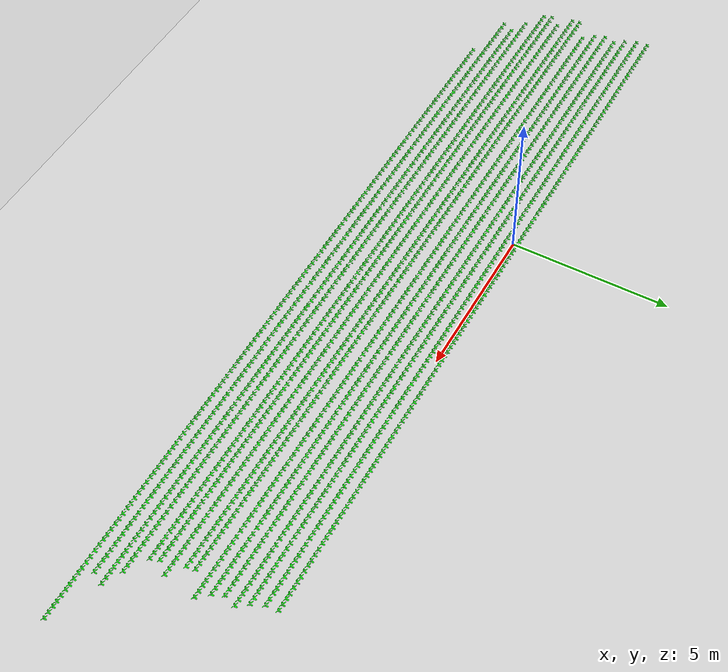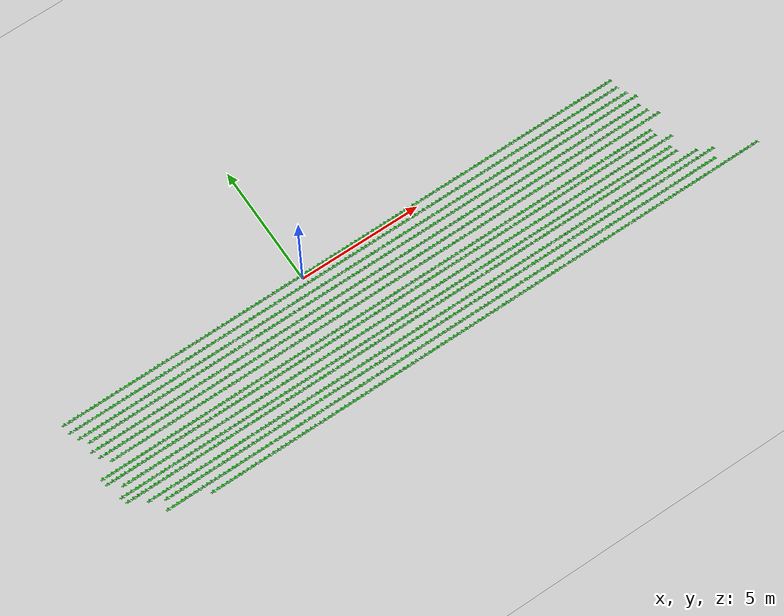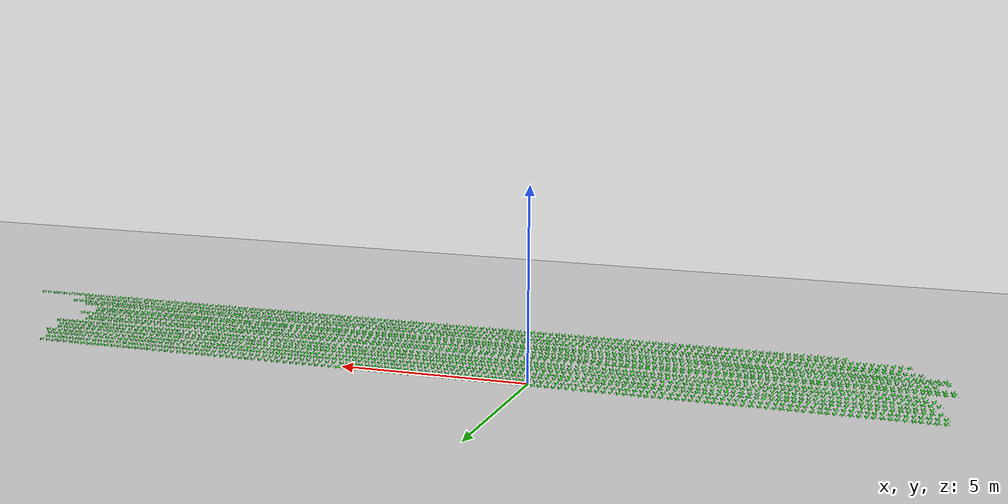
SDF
<sdf version="1.7">
 <world name="default">
  <model name="ground_plane">
   <static>1</static>
   <link name="link">
    <collision name="collision">
     <geometry><plane><normal>0 0 1</normal><size>100 100</size></plane></geometry>
     <surface>
      <contact><collide_bitmask>65535</collide_bitmask></contact>
      <friction><ode><mu>100</mu><mu2>50</mu2></ode></friction>
     </surface>
    </collision>
    <visual name="visual">
     <cast_shadows>0</cast_shadows>
     <geometry><plane><normal>0 0 1</normal><size>100 100</size></plane></geometry>
     <material>
      <script><uri>file://media/materials/scripts/gazebo.material</uri><name>Gazebo/Grey</name></script>
     </material>
    </visual>
   </link>
  </model>
  <model name="one_crop_row">
   <link name="link_0">
    <inertial>
     <mass>9.98</mass>
     <inertia>
      <ixx>0.166667</ixx>
      <ixy>0</ixy>
      <ixz>0</ixz>
      <iyy>0.166667</iyy>
      <iyz>0</iyz>
      <izz>0.166667</izz>
     </inertia>
    </inertial>
    <visual name="visual">
     <geometry><mesh><uri>/home/devesh/one_crop_row.stl</uri><scale>1 1 1</scale></mesh></geometry>
     <material>
      <lighting>1</lighting>
      <script><uri>file://media/materials/scripts/gazebo.material</uri><name>Gazebo/Grey</name></script>
      <shader type="pixel"><normal_map>__default__</normal_map></shader>
      <ambient>0 1 0 0</ambient>
      <diffuse>0 1 0 0</diffuse>
      <specular>0 1 0 0</specular>
      <emissive>0 0 0 1</emissive>
     </material>
    </visual>
    <collision name="collision">
     <geometry><mesh><uri>/home/devesh/one_crop_row.stl</uri><scale>1 1 1</scale></mesh></geometry>
     <surface>
      <friction>
       <ode><mu>1</mu><mu2>1</mu2><fdir1>0 0 0</fdir1><slip1>0</slip1><slip2>0</slip2></ode>
       <torsional>
        <coefficient>1</coefficient>
        <patch_radius>0</patch_radius>
        <surface_radius>0</surface_radius>
        <use_patch_radius>1</use_patch_radius>
        <ode><slip>0</slip></ode>
       </torsional>
      </friction>
      <bounce><restitution_coefficient>0</restitution_coefficient><threshold>1e+06</threshold></bounce>
      <contact>
       <collide_without_contact>0</collide_without_contact>
       <collide_without_contact_bitmask>1</collide_without_contact_bitmask>
       <collide_bitmask>1</collide_bitmask>
       <ode>
        <soft_cfm>0</soft_cfm>
        <soft_erp>0.2</soft_erp>
        <kp>1e+13</kp>
        <kd>1</kd>
        <max_vel>0.01</max_vel>
        <min_depth>0</min_depth>
       </ode>
       <bullet>
        <split_impulse>1</split_impulse>
        <split_impulse_penetration_threshold>-0.01</split_impulse_penetration_threshold>
        <soft_cfm>0</soft_cfm>
        <soft_erp>0.2</soft_erp>
        <kp>1e+13</kp>
        <kd>1</kd>
       </bullet>
      </contact>
     </surface>
    </collision>
   </link>
   <static>0</static>
   <pose>-0.146054 0.114971 0.015873 -0.021759 0 0.000192</pose>
  </model>
  <model name="one_crop_row_clone">
   <link name="link_0">
    <inertial>
     <mass>9.98</mass>
     <inertia>
      <ixx>0.166667</ixx>
      <ixy>0</ixy>
      <ixz>0</ixz>
      <iyy>0.166667</iyy>
      <iyz>0</iyz>
      <izz>0.166667</izz>
     </inertia>
    </inertial>
    <visual name="visual">
     <geometry><mesh><uri>/home/devesh/one_crop_row.stl</uri><scale>1 1 1</scale></mesh></geometry>
     <material>
      <lighting>1</lighting>
      <script><uri>file://media/materials/scripts/gazebo.material</uri><name>Gazebo/Grey</name></script>
      <shader type="pixel"><normal_map>__default__</normal_map></shader>
      <ambient>0 1 0 0</ambient>
      <diffuse>0 1 0 0</diffuse>
      <specular>0 1 0 0</specular>
      <emissive>0 0 0 1</emissive>
     </material>
    </visual>
    <collision name="collision">
     <geometry><mesh><uri>/home/devesh/one_crop_row.stl</uri><scale>1 1 1</scale></mesh></geometry>
     <surface>
      <friction>
       <ode><mu>1</mu><mu2>1</mu2><fdir1>0 0 0</fdir1><slip1>0</slip1><slip2>0</slip2></ode>
       <torsional>
        <coefficient>1</coefficient>
        <patch_radius>0</patch_radius>
        <surface_radius>0</surface_radius>
        <use_patch_radius>1</use_patch_radius>
        <ode><slip>0</slip></ode>
       </torsional>
      </friction>
      <bounce><restitution_coefficient>0</restitution_coefficient><threshold>1e+06</threshold></bounce>
      <contact>
       <collide_without_contact>0</collide_without_contact>
       <collide_without_contact_bitmask>1</collide_without_contact_bitmask>
       <collide_bitmask>1</collide_bitmask>
       <ode>
        <soft_cfm>0</soft_cfm>
        <soft_erp>0.2</soft_erp>
        <kp>1e+13</kp>
        <kd>1</kd>
        <max_vel>0.01</max_vel>
        <min_depth>0</min_depth>
       </ode>
       <bullet>
        <split_impulse>1</split_impulse>
        <split_impulse_penetration_threshold>-0.01</split_impulse_penetration_threshold>
        <soft_cfm>0</soft_cfm>
        <soft_erp>0.2</soft_erp>
        <kp>1e+13</kp>
        <kd>1</kd>
       </bullet>
      </contact>
     </surface>
    </collision>
   </link>
   <static>0</static>
   <pose>0.274892 -0.931708 0.015872 -0.022045 -0 0.000192</pose>
  </model>
  <model name="one_crop_row_clone_0">
   <link name="link_0">
    <inertial>
     <mass>9.98</mass>
     <inertia>
      <ixx>0.166667</ixx>
      <ixy>0</ixy>
      <ixz>0</ixz>
      <iyy>0.166667</iyy>
      <iyz>0</iyz>
      <izz>0.166667</izz>
     </inertia>
    </inertial>
    <visual name="visual">
     <geometry><mesh><uri>/home/devesh/one_crop_row.stl</uri><scale>1 1 1</scale></mesh></geometry>
     <material>
      <lighting>1</lighting>
      <script><uri>file://media/materials/scripts/gazebo.material</uri><name>Gazebo/Grey</name></script>
      <shader type="pixel"><normal_map>__default__</normal_map></shader>
      <ambient>0 1 0 0</ambient>
      <diffuse>0 1 0 0</diffuse>
      <specular>0 1 0 0</specular>
      <emissive>0 0 0 1</emissive>
     </material>
    </visual>
    <collision name="collision">
     <geometry><mesh><uri>/home/devesh/one_crop_row.stl</uri><scale>1 1 1</scale></mesh></geometry>
     <surface>
      <friction>
       <ode><mu>1</mu><mu2>1</mu2><fdir1>0 0 0</fdir1><slip1>0</slip1><slip2>0</slip2></ode>
       <torsional>
        <coefficient>1</coefficient>
        <patch_radius>0</patch_radius>
        <surface_radius>0</surface_radius>
        <use_patch_radius>1</use_patch_radius>
        <ode><slip>0</slip></ode>
       </torsional>
      </friction>
      <bounce><restitution_coefficient>0</restitution_coefficient><threshold>1e+06</threshold></bounce>
      <contact>
       <collide_without_contact>0</collide_without_contact>
       <collide_without_contact_bitmask>1</collide_without_contact_bitmask>
       <collide_bitmask>1</collide_bitmask>
       <ode>
        <soft_cfm>0</soft_cfm>
        <soft_erp>0.2</soft_erp>
        <kp>1e+13</kp>
        <kd>1</kd>
        <max_vel>0.01</max_vel>
        <min_depth>0</min_depth>
       </ode>
       <bullet>
        <split_impulse>1</split_impulse>
        <split_impulse_penetration_threshold>-0.01</split_impulse_penetration_threshold>
        <soft_cfm>0</soft_cfm>
        <soft_erp>0.2</soft_erp>
        <kp>1e+13</kp>
        <kd>1</kd>
       </bullet>
      </contact>
     </surface>
    </collision>
   </link>
   <static>0</static>
   <pose>-0.112666 -0.25225 0.015872 -0.022063 -0 0.000192</pose>
  </model>
  <model name="one_crop_row_clone_1">
   <link name="link_0">
    <inertial>
     <mass>9.98</mass>
     <inertia>
      <ixx>0.166667</ixx>
      <ixy>0</ixy>
      <ixz>0</ixz>
      <iyy>0.166667</iyy>
      <iyz>0</iyz>
      <izz>0.166667</izz>
     </inertia>
    </inertial>
    <visual name="visual">
     <geometry><mesh><uri>/home/devesh/one_crop_row.stl</uri><scale>1 1 1</scale></mesh></geometry>
     <material>
      <lighting>1</lighting>
      <script><uri>file://media/materials/scripts/gazebo.material</uri><name>Gazebo/Grey</name></script>
      <shader type="pixel"><normal_map>__default__</normal_map></shader>
      <ambient>0 1 0 0</ambient>
      <diffuse>0 1 0 0</diffuse>
      <specular>0 1 0 0</specular>
      <emissive>0 0 0 1</emissive>
     </material>
    </visual>
    <collision name="collision">
     <geometry><mesh><uri>/home/devesh/one_crop_row.stl</uri><scale>1 1 1</scale></mesh></geometry>
     <surface>
      <friction>
       <ode><mu>1</mu><mu2>1</mu2><fdir1>0 0 0</fdir1><slip1>0</slip1><slip2>0</slip2></ode>
       <torsional>
        <coefficient>1</coefficient>
        <patch_radius>0</patch_radius>
        <surface_radius>0</surface_radius>
        <use_patch_radius>1</use_patch_radius>
        <ode><slip>0</slip></ode>
       </torsional>
      </friction>
      <bounce><restitution_coefficient>0</restitution_coefficient><threshold>1e+06</threshold></bounce>
      <contact>
       <collide_without_contact>0</collide_without_contact>
       <collide_without_contact_bitmask>1</collide_without_contact_bitmask>
       <collide_bitmask>1</collide_bitmask>
       <ode>
        <soft_cfm>0</soft_cfm>
        <soft_erp>0.2</soft_erp>
        <kp>1e+13</kp>
        <kd>1</kd>
        <max_vel>0.01</max_vel>
        <min_depth>0</min_depth>
       </ode>
       <bullet>
        <split_impulse>1</split_impulse>
        <split_impulse_penetration_threshold>-0.01</split_impulse_penetration_threshold>
        <soft_cfm>0</soft_cfm>
        <soft_erp>0.2</soft_erp>
        <kp>1e+13</kp>
        <kd>1</kd>
       </bullet>
      </contact>
     </surface>
    </collision>
   </link>
   <static>0</static>
   <pose>0.046398 -0.61756 0.015874 -0.021701 0 0.000192</pose>
  </model>
  <model name="one_crop_row_clone_2">
   <link name="link_0">
    <inertial>
     <mass>9.98</mass>
     <inertia>
      <ixx>0.166667</ixx>
      <ixy>0</ixy>
      <ixz>0</ixz>
      <iyy>0.166667</iyy>
      <iyz>0</iyz>
      <izz>0.166667</izz>
     </inertia>
    </inertial>
    <visual name="visual">
     <geometry><mesh><uri>/home/devesh/one_crop_row.stl</uri><scale>1 1 1</scale></mesh></geometry>
     <material>
      <lighting>1</lighting>
      <script><uri>file://media/materials/scripts/gazebo.material</uri><name>Gazebo/Grey</name></script>
      <shader type="pixel"><normal_map>__default__</normal_map></shader>
      <ambient>0 1 0 0</ambient>
      <diffuse>0 1 0 0</diffuse>
      <specular>0 1 0 0</specular>
      <emissive>0 0 0 1</emissive>
     </material>
    </visual>
    <collision name="collision">
     <geometry><mesh><uri>/home/devesh/one_crop_row.stl</uri><scale>1 1 1</scale></mesh></geometry>
     <surface>
      <friction>
       <ode><mu>1</mu><mu2>1</mu2><fdir1>0 0 0</fdir1><slip1>0</slip1><slip2>0</slip2></ode>
       <torsional>
        <coefficient>1</coefficient>
        <patch_radius>0</patch_radius>
        <surface_radius>0</surface_radius>
        <use_patch_radius>1</use_patch_radius>
        <ode><slip>0</slip></ode>
       </torsional>
      </friction>
      <bounce><restitution_coefficient>0</restitution_coefficient><threshold>1e+06</threshold></bounce>
      <contact>
       <collide_without_contact>0</collide_without_contact>
       <collide_without_contact_bitmask>1</collide_without_contact_bitmask>
       <collide_bitmask>1</collide_bitmask>
       <ode>
        <soft_cfm>0</soft_cfm>
        <soft_erp>0.2</soft_erp>
        <kp>1e+13</kp>
        <kd>1</kd>
        <max_vel>0.01</max_vel>
        <min_depth>0</min_depth>
       </ode>
       <bullet>
        <split_impulse>1</split_impulse>
        <split_impulse_penetration_threshold>-0.01</split_impulse_penetration_threshold>
        <soft_cfm>0</soft_cfm>
        <soft_erp>0.2</soft_erp>
        <kp>1e+13</kp>
        <kd>1</kd>
       </bullet>
      </contact>
     </surface>
    </collision>
   </link>
   <static>0</static>
   <pose>0.564726 -1.95281 0.015872 -0.022058 -0 0.000192</pose>
  </model>
  <model name="one_crop_row_clone_3">
   <link name="link_0">
    <inertial>
     <mass>9.98</mass>
     <inertia>
      <ixx>0.166667</ixx>
      <ixy>0</ixy>
      <ixz>0</ixz>
      <iyy>0.166667</iyy>
      <iyz>0</iyz>
      <izz>0.166667</izz>
     </inertia>
    </inertial>
    <visual name="visual">
     <geometry><mesh><uri>/home/devesh/one_crop_row.stl</uri><scale>1 1 1</scale></mesh></geometry>
     <material>
      <lighting>1</lighting>
      <script><uri>file://media/materials/scripts/gazebo.material</uri><name>Gazebo/Grey</name></script>
      <shader type="pixel"><normal_map>__default__</normal_map></shader>
      <ambient>0 1 0 0</ambient>
      <diffuse>0 1 0 0</diffuse>
      <specular>0 1 0 0</specular>
      <emissive>0 0 0 1</emissive>
     </material>
    </visual>
    <collision name="collision">
     <geometry><mesh><uri>/home/devesh/one_crop_row.stl</uri><scale>1 1 1</scale></mesh></geometry>
     <surface>
      <friction>
       <ode><mu>1</mu><mu2>1</mu2><fdir1>0 0 0</fdir1><slip1>0</slip1><slip2>0</slip2></ode>
       <torsional>
        <coefficient>1</coefficient>
        <patch_radius>0</patch_radius>
        <surface_radius>0</surface_radius>
        <use_patch_radius>1</use_patch_radius>
        <ode><slip>0</slip></ode>
       </torsional>
      </friction>
      <bounce><restitution_coefficient>0</restitution_coefficient><threshold>1e+06</threshold></bounce>
      <contact>
       <collide_without_contact>0</collide_without_contact>
       <collide_without_contact_bitmask>1</collide_without_contact_bitmask>
       <collide_bitmask>1</collide_bitmask>
       <ode>
        <soft_cfm>0</soft_cfm>
        <soft_erp>0.2</soft_erp>
        <kp>1e+13</kp>
        <kd>1</kd>
        <max_vel>0.01</max_vel>
        <min_depth>0</min_depth>
       </ode>
       <bullet>
        <split_impulse>1</split_impulse>
        <split_impulse_penetration_threshold>-0.01</split_impulse_penetration_threshold>
        <soft_cfm>0</soft_cfm>
        <soft_erp>0.2</soft_erp>
        <kp>1e+13</kp>
        <kd>1</kd>
       </bullet>
      </contact>
     </surface>
    </collision>
   </link>
   <static>0</static>
   <pose>0.149362 -1.29673 0.015866 -0.022111 -1e-06 0.000192</pose>
  </model>
  <model name="one_crop_row_clone_4">
   <link name="link_0">
    <inertial>
     <mass>9.98</mass>
     <inertia>
      <ixx>0.166667</ixx>
      <ixy>0</ixy>
      <ixz>0</ixz>
      <iyy>0.166667</iyy>
      <iyz>0</iyz>
      <izz>0.166667</izz>
     </inertia>
    </inertial>
    <visual name="visual">
     <geometry><mesh><uri>/home/devesh/one_crop_row.stl</uri><scale>1 1 1</scale></mesh></geometry>
     <material>
      <lighting>1</lighting>
      <script><uri>file://media/materials/scripts/gazebo.material</uri><name>Gazebo/Grey</name></script>
      <shader type="pixel"><normal_map>__default__</normal_map></shader>
      <ambient>0 1 0 0</ambient>
      <diffuse>0 1 0 0</diffuse>
      <specular>0 1 0 0</specular>
      <emissive>0 0 0 1</emissive>
     </material>
    </visual>
    <collision name="collision">
     <geometry><mesh><uri>/home/devesh/one_crop_row.stl</uri><scale>1 1 1</scale></mesh></geometry>
     <surface>
      <friction>
       <ode><mu>1</mu><mu2>1</mu2><fdir1>0 0 0</fdir1><slip1>0</slip1><slip2>0</slip2></ode>
       <torsional>
        <coefficient>1</coefficient>
        <patch_radius>0</patch_radius>
        <surface_radius>0</surface_radius>
        <use_patch_radius>1</use_patch_radius>
        <ode><slip>0</slip></ode>
       </torsional>
      </friction>
      <bounce><restitution_coefficient>0</restitution_coefficient><threshold>1e+06</threshold></bounce>
      <contact>
       <collide_without_contact>0</collide_without_contact>
       <collide_without_contact_bitmask>1</collide_without_contact_bitmask>
       <collide_bitmask>1</collide_bitmask>
       <ode>
        <soft_cfm>0</soft_cfm>
        <soft_erp>0.2</soft_erp>
        <kp>1e+13</kp>
        <kd>1</kd>
        <max_vel>0.01</max_vel>
        <min_depth>0</min_depth>
       </ode>
       <bullet>
        <split_impulse>1</split_impulse>
        <split_impulse_penetration_threshold>-0.01</split_impulse_penetration_threshold>
        <soft_cfm>0</soft_cfm>
        <soft_erp>0.2</soft_erp>
        <kp>1e+13</kp>
        <kd>1</kd>
       </bullet>
      </contact>
     </surface>
    </collision>
   </link>
   <static>0</static>
   <pose>0.286169 -1.62393 0.015863 -0.022038 -0 0.000192</pose>
  </model>
  <model name="one_crop_row_clone_5">
   <link name="link_0">
    <inertial>
     <mass>9.98</mass>
     <inertia>
      <ixx>0.166667</ixx>
      <ixy>0</ixy>
      <ixz>0</ixz>
      <iyy>0.166667</iyy>
      <iyz>0</iyz>
      <izz>0.166667</izz>
     </inertia>
    </inertial>
    <visual name="visual">
     <geometry><mesh><uri>/home/devesh/one_crop_row.stl</uri><scale>1 1 1</scale></mesh></geometry>
     <material>
      <lighting>1</lighting>
      <script><uri>file://media/materials/scripts/gazebo.material</uri><name>Gazebo/Grey</name></script>
      <shader type="pixel"><normal_map>__default__</normal_map></shader>
      <ambient>0 1 0 0</ambient>
      <diffuse>0 1 0 0</diffuse>
      <specular>0 1 0 0</specular>
      <emissive>0 0 0 1</emissive>
     </material>
    </visual>
    <collision name="collision">
     <geometry><mesh><uri>/home/devesh/one_crop_row.stl</uri><scale>1 1 1</scale></mesh></geometry>
     <surface>
      <friction>
       <ode><mu>1</mu><mu2>1</mu2><fdir1>0 0 0</fdir1><slip1>0</slip1><slip2>0</slip2></ode>
       <torsional>
        <coefficient>1</coefficient>
        <patch_radius>0</patch_radius>
        <surface_radius>0</surface_radius>
        <use_patch_radius>1</use_patch_radius>
        <ode><slip>0</slip></ode>
       </torsional>
      </friction>
      <bounce><restitution_coefficient>0</restitution_coefficient><threshold>1e+06</threshold></bounce>
      <contact>
       <collide_without_contact>0</collide_without_contact>
       <collide_without_contact_bitmask>1</collide_without_contact_bitmask>
       <collide_bitmask>1</collide_bitmask>
       <ode>
        <soft_cfm>0</soft_cfm>
        <soft_erp>0.2</soft_erp>
        <kp>1e+13</kp>
        <kd>1</kd>
        <max_vel>0.01</max_vel>
        <min_depth>0</min_depth>
       </ode>
       <bullet>
        <split_impulse>1</split_impulse>
        <split_impulse_penetration_threshold>-0.01</split_impulse_penetration_threshold>
        <soft_cfm>0</soft_cfm>
        <soft_erp>0.2</soft_erp>
        <kp>1e+13</kp>
        <kd>1</kd>
       </bullet>
      </contact>
     </surface>
    </collision>
   </link>
   <static>0</static>
   <pose>0.396656 -2.97327 0.015873 -0.021941 0 0.000192</pose>
  </model>
  <model name="one_crop_row_clone_6">
   <link name="link_0">
    <inertial>
     <mass>9.98</mass>
     <inertia>
      <ixx>0.166667</ixx>
      <ixy>0</ixy>
      <ixz>0</ixz>
      <iyy>0.166667</iyy>
      <iyz>0</iyz>
      <izz>0.166667</izz>
     </inertia>
    </inertial>
    <visual name="visual">
     <geometry><mesh><uri>/home/devesh/one_crop_row.stl</uri><scale>1 1 1</scale></mesh></geometry>
     <material>
      <lighting>1</lighting>
      <script><uri>file://media/materials/scripts/gazebo.material</uri><name>Gazebo/Grey</name></script>
      <shader type="pixel"><normal_map>__default__</normal_map></shader>
      <ambient>0 1 0 0</ambient>
      <diffuse>0 1 0 0</diffuse>
      <specular>0 1 0 0</specular>
      <emissive>0 0 0 1</emissive>
     </material>
    </visual>
    <collision name="collision">
     <geometry><mesh><uri>/home/devesh/one_crop_row.stl</uri><scale>1 1 1</scale></mesh></geometry>
     <surface>
      <friction>
       <ode><mu>1</mu><mu2>1</mu2><fdir1>0 0 0</fdir1><slip1>0</slip1><slip2>0</slip2></ode>
       <torsional>
        <coefficient>1</coefficient>
        <patch_radius>0</patch_radius>
        <surface_radius>0</surface_radius>
        <use_patch_radius>1</use_patch_radius>
        <ode><slip>0</slip></ode>
       </torsional>
      </friction>
      <bounce><restitution_coefficient>0</restitution_coefficient><threshold>1e+06</threshold></bounce>
      <contact>
       <collide_without_contact>0</collide_without_contact>
       <collide_without_contact_bitmask>1</collide_without_contact_bitmask>
       <collide_bitmask>1</collide_bitmask>
       <ode>
        <soft_cfm>0</soft_cfm>
        <soft_erp>0.2</soft_erp>
        <kp>1e+13</kp>
        <kd>1</kd>
        <max_vel>0.01</max_vel>
        <min_depth>0</min_depth>
       </ode>
       <bullet>
        <split_impulse>1</split_impulse>
        <split_impulse_penetration_threshold>-0.01</split_impulse_penetration_threshold>
        <soft_cfm>0</soft_cfm>
        <soft_erp>0.2</soft_erp>
        <kp>1e+13</kp>
        <kd>1</kd>
       </bullet>
      </contact>
     </surface>
    </collision>
   </link>
   <static>0</static>
   <pose>-0.107863 -2.36178 0.015871 -0.022082 -3e-06 0.000192</pose>
  </model>
  <model name="one_crop_row_clone_7">
   <link name="link_0">
    <inertial>
     <mass>9.98</mass>
     <inertia>
      <ixx>0.166667</ixx>
      <ixy>0</ixy>
      <ixz>0</ixz>
      <iyy>0.166667</iyy>
      <iyz>0</iyz>
      <izz>0.166667</izz>
     </inertia>
    </inertial>
    <visual name="visual">
     <geometry><mesh><uri>/home/devesh/one_crop_row.stl</uri><scale>1 1 1</scale></mesh></geometry>
     <material>
      <lighting>1</lighting>
      <script><uri>file://media/materials/scripts/gazebo.material</uri><name>Gazebo/Grey</name></script>
      <shader type="pixel"><normal_map>__default__</normal_map></shader>
      <ambient>0 1 0 0</ambient>
      <diffuse>0 1 0 0</diffuse>
      <specular>0 1 0 0</specular>
      <emissive>0 0 0 1</emissive>
     </material>
    </visual>
    <collision name="collision">
     <geometry><mesh><uri>/home/devesh/one_crop_row.stl</uri><scale>1 1 1</scale></mesh></geometry>
     <surface>
      <friction>
       <ode><mu>1</mu><mu2>1</mu2><fdir1>0 0 0</fdir1><slip1>0</slip1><slip2>0</slip2></ode>
       <torsional>
        <coefficient>1</coefficient>
        <patch_radius>0</patch_radius>
        <surface_radius>0</surface_radius>
        <use_patch_radius>1</use_patch_radius>
        <ode><slip>0</slip></ode>
       </torsional>
      </friction>
      <bounce><restitution_coefficient>0</restitution_coefficient><threshold>1e+06</threshold></bounce>
      <contact>
       <collide_without_contact>0</collide_without_contact>
       <collide_without_contact_bitmask>1</collide_without_contact_bitmask>
       <collide_bitmask>1</collide_bitmask>
       <ode>
        <soft_cfm>0</soft_cfm>
        <soft_erp>0.2</soft_erp>
        <kp>1e+13</kp>
        <kd>1</kd>
        <max_vel>0.01</max_vel>
        <min_depth>0</min_depth>
       </ode>
       <bullet>
        <split_impulse>1</split_impulse>
        <split_impulse_penetration_threshold>-0.01</split_impulse_penetration_threshold>
        <soft_cfm>0</soft_cfm>
        <soft_erp>0.2</soft_erp>
        <kp>1e+13</kp>
        <kd>1</kd>
       </bullet>
      </contact>
     </surface>
    </collision>
   </link>
   <static>0</static>
   <pose>-0.066521 -2.61551 0.015872 -0.022063 -0 0.000192</pose>
  </model>
  <model name="one_crop_row_clone_8">
   <link name="link_0">
    <inertial>
     <mass>9.98</mass>
     <inertia>
      <ixx>0.166667</ixx>
      <ixy>0</ixy>
      <ixz>0</ixz>
      <iyy>0.166667</iyy>
      <iyz>0</iyz>
      <izz>0.166667</izz>
     </inertia>
    </inertial>
    <visual name="visual">
     <geometry><mesh><uri>/home/devesh/one_crop_row.stl</uri><scale>1 1 1</scale></mesh></geometry>
     <material>
      <lighting>1</lighting>
      <script><uri>file://media/materials/scripts/gazebo.material</uri><name>Gazebo/Grey</name></script>
      <shader type="pixel"><normal_map>__default__</normal_map></shader>
      <ambient>0 1 0 0</ambient>
      <diffuse>0 1 0 0</diffuse>
      <specular>0 1 0 0</specular>
      <emissive>0 0 0 1</emissive>
     </material>
    </visual>
    <collision name="collision">
     <geometry><mesh><uri>/home/devesh/one_crop_row.stl</uri><scale>1 1 1</scale></mesh></geometry>
     <surface>
      <friction>
       <ode><mu>1</mu><mu2>1</mu2><fdir1>0 0 0</fdir1><slip1>0</slip1><slip2>0</slip2></ode>
       <torsional>
        <coefficient>1</coefficient>
        <patch_radius>0</patch_radius>
        <surface_radius>0</surface_radius>
        <use_patch_radius>1</use_patch_radius>
        <ode><slip>0</slip></ode>
       </torsional>
      </friction>
      <bounce><restitution_coefficient>0</restitution_coefficient><threshold>1e+06</threshold></bounce>
      <contact>
       <collide_without_contact>0</collide_without_contact>
       <collide_without_contact_bitmask>1</collide_without_contact_bitmask>
       <collide_bitmask>1</collide_bitmask>
       <ode>
        <soft_cfm>0</soft_cfm>
        <soft_erp>0.2</soft_erp>
        <kp>1e+13</kp>
        <kd>1</kd>
        <max_vel>0.01</max_vel>
        <min_depth>0</min_depth>
       </ode>
       <bullet>
        <split_impulse>1</split_impulse>
        <split_impulse_penetration_threshold>-0.01</split_impulse_penetration_threshold>
        <soft_cfm>0</soft_cfm>
        <soft_erp>0.2</soft_erp>
        <kp>1e+13</kp>
        <kd>1</kd>
       </bullet>
      </contact>
     </surface>
    </collision>
   </link>
   <static>0</static>
   <pose>0.829495 -3.96048 0.015869 -0.022102 1e-06 0.000192</pose>
  </model>
  <model name="one_crop_row_clone_9">
   <link name="link_0">
    <inertial>
     <mass>9.98</mass>
     <inertia>
      <ixx>0.166667</ixx>
      <ixy>0</ixy>
      <ixz>0</ixz>
      <iyy>0.166667</iyy>
      <iyz>0</iyz>
      <izz>0.166667</izz>
     </inertia>
    </inertial>
    <visual name="visual">
     <geometry><mesh><uri>/home/devesh/one_crop_row.stl</uri><scale>1 1 1</scale></mesh></geometry>
     <material>
      <lighting>1</lighting>
      <script><uri>file://media/materials/scripts/gazebo.material</uri><name>Gazebo/Grey</name></script>
      <shader type="pixel"><normal_map>__default__</normal_map></shader>
      <ambient>0 1 0 0</ambient>
      <diffuse>0 1 0 0</diffuse>
      <specular>0 1 0 0</specular>
      <emissive>0 0 0 1</emissive>
     </material>
    </visual>
    <collision name="collision">
     <geometry><mesh><uri>/home/devesh/one_crop_row.stl</uri><scale>1 1 1</scale></mesh></geometry>
     <surface>
      <friction>
       <ode><mu>1</mu><mu2>1</mu2><fdir1>0 0 0</fdir1><slip1>0</slip1><slip2>0</slip2></ode>
       <torsional>
        <coefficient>1</coefficient>
        <patch_radius>0</patch_radius>
        <surface_radius>0</surface_radius>
        <use_patch_radius>1</use_patch_radius>
        <ode><slip>0</slip></ode>
       </torsional>
      </friction>
      <bounce><restitution_coefficient>0</restitution_coefficient><threshold>1e+06</threshold></bounce>
      <contact>
       <collide_without_contact>0</collide_without_contact>
       <collide_without_contact_bitmask>1</collide_without_contact_bitmask>
       <collide_bitmask>1</collide_bitmask>
       <ode>
        <soft_cfm>0</soft_cfm>
        <soft_erp>0.2</soft_erp>
        <kp>1e+13</kp>
        <kd>1</kd>
        <max_vel>0.01</max_vel>
        <min_depth>0</min_depth>
       </ode>
       <bullet>
        <split_impulse>1</split_impulse>
        <split_impulse_penetration_threshold>-0.01</split_impulse_penetration_threshold>
        <soft_cfm>0</soft_cfm>
        <soft_erp>0.2</soft_erp>
        <kp>1e+13</kp>
        <kd>1</kd>
       </bullet>
      </contact>
     </surface>
    </collision>
   </link>
   <static>0</static>
   <pose>0.104402 -3.31136 0.015873 -0.021732 -0 0.000192</pose>
  </model>
  <model name="one_crop_row_clone_10">
   <link name="link_0">
    <inertial>
     <mass>9.98</mass>
     <inertia>
      <ixx>0.166667</ixx>
      <ixy>0</ixy>
      <ixz>0</ixz>
      <iyy>0.166667</iyy>
      <iyz>0</iyz>
      <izz>0.166667</izz>
     </inertia>
    </inertial>
    <visual name="visual">
     <geometry><mesh><uri>/home/devesh/one_crop_row.stl</uri><scale>1 1 1</scale></mesh></geometry>
     <material>
      <lighting>1</lighting>
      <script><uri>file://media/materials/scripts/gazebo.material</uri><name>Gazebo/Grey</name></script>
      <shader type="pixel"><normal_map>__default__</normal_map></shader>
      <ambient>0 1 0 0</ambient>
      <diffuse>0 1 0 0</diffuse>
      <specular>0 1 0 0</specular>
      <emissive>0 0 0 1</emissive>
     </material>
    </visual>
    <collision name="collision">
     <geometry><mesh><uri>/home/devesh/one_crop_row.stl</uri><scale>1 1 1</scale></mesh></geometry>
     <surface>
      <friction>
       <ode><mu>1</mu><mu2>1</mu2><fdir1>0 0 0</fdir1><slip1>0</slip1><slip2>0</slip2></ode>
       <torsional>
        <coefficient>1</coefficient>
        <patch_radius>0</patch_radius>
        <surface_radius>0</surface_radius>
        <use_patch_radius>1</use_patch_radius>
        <ode><slip>0</slip></ode>
       </torsional>
      </friction>
      <bounce><restitution_coefficient>0</restitution_coefficient><threshold>1e+06</threshold></bounce>
      <contact>
       <collide_without_contact>0</collide_without_contact>
       <collide_without_contact_bitmask>1</collide_without_contact_bitmask>
       <collide_bitmask>1</collide_bitmask>
       <ode>
        <soft_cfm>0</soft_cfm>
        <soft_erp>0.2</soft_erp>
        <kp>1e+13</kp>
        <kd>1</kd>
        <max_vel>0.01</max_vel>
        <min_depth>0</min_depth>
       </ode>
       <bullet>
        <split_impulse>1</split_impulse>
        <split_impulse_penetration_threshold>-0.01</split_impulse_penetration_threshold>
        <soft_cfm>0</soft_cfm>
        <soft_erp>0.2</soft_erp>
        <kp>1e+13</kp>
        <kd>1</kd>
       </bullet>
      </contact>
     </surface>
    </collision>
   </link>
   <static>0</static>
   <pose>0.196506 -3.56718 0.015873 -0.021966 -0 0.000192</pose>
  </model>
  <model name="one_crop_row_clone_11">
   <link name="link_0">
    <inertial>
     <mass>9.98</mass>
     <inertia>
      <ixx>0.166667</ixx>
      <ixy>0</ixy>
      <ixz>0</ixz>
      <iyy>0.166667</iyy>
      <iyz>0</iyz>
      <izz>0.166667</izz>
     </inertia>
    </inertial>
    <visual name="visual">
     <geometry><mesh><uri>/home/devesh/one_crop_row.stl</uri><scale>1 1 1</scale></mesh></geometry>
     <material>
      <lighting>1</lighting>
      <script><uri>file://media/materials/scripts/gazebo.material</uri><name>Gazebo/Grey</name></script>
      <shader type="pixel"><normal_map>__default__</normal_map></shader>
      <ambient>0 1 0 0</ambient>
      <diffuse>0 1 0 0</diffuse>
      <specular>0 1 0 0</specular>
      <emissive>0 0 0 1</emissive>
     </material>
    </visual>
    <collision name="collision">
     <geometry><mesh><uri>/home/devesh/one_crop_row.stl</uri><scale>1 1 1</scale></mesh></geometry>
     <surface>
      <friction>
       <ode><mu>1</mu><mu2>1</mu2><fdir1>0 0 0</fdir1><slip1>0</slip1><slip2>0</slip2></ode>
       <torsional>
        <coefficient>1</coefficient>
        <patch_radius>0</patch_radius>
        <surface_radius>0</surface_radius>
        <use_patch_radius>1</use_patch_radius>
        <ode><slip>0</slip></ode>
       </torsional>
      </friction>
      <bounce><restitution_coefficient>0</restitution_coefficient><threshold>1e+06</threshold></bounce>
      <contact>
       <collide_without_contact>0</collide_without_contact>
       <collide_without_contact_bitmask>1</collide_without_contact_bitmask>
       <collide_bitmask>1</collide_bitmask>
       <ode>
        <soft_cfm>0</soft_cfm>
        <soft_erp>0.2</soft_erp>
        <kp>1e+13</kp>
        <kd>1</kd>
        <max_vel>0.01</max_vel>
        <min_depth>0</min_depth>
       </ode>
       <bullet>
        <split_impulse>1</split_impulse>
        <split_impulse_penetration_threshold>-0.01</split_impulse_penetration_threshold>
        <soft_cfm>0</soft_cfm>
        <soft_erp>0.2</soft_erp>
        <kp>1e+13</kp>
        <kd>1</kd>
       </bullet>
      </contact>
     </surface>
    </collision>
   </link>
   <static>0</static>
   <pose>2.86542 -4.94605 0.015869 -0.021897 -1e-06 0.000192</pose>
  </model>
  <model name="one_crop_row_clone_12">
   <link name="link_0">
    <inertial>
     <mass>9.98</mass>
     <inertia>
      <ixx>0.166667</ixx>
      <ixy>0</ixy>
      <ixz>0</ixz>
      <iyy>0.166667</iyy>
      <iyz>0</iyz>
      <izz>0.166667</izz>
     </inertia>
    </inertial>
    <visual name="visual">
     <geometry><mesh><uri>/home/devesh/one_crop_row.stl</uri><scale>1 1 1</scale></mesh></geometry>
     <material>
      <lighting>1</lighting>
      <script><uri>file://media/materials/scripts/gazebo.material</uri><name>Gazebo/Grey</name></script>
      <shader type="pixel"><normal_map>__default__</normal_map></shader>
      <ambient>0 1 0 0</ambient>
      <diffuse>0 1 0 0</diffuse>
      <specular>0 1 0 0</specular>
      <emissive>0 0 0 1</emissive>
     </material>
    </visual>
    <collision name="collision">
     <geometry><mesh><uri>/home/devesh/one_crop_row.stl</uri><scale>1 1 1</scale></mesh></geometry>
     <surface>
      <friction>
       <ode><mu>1</mu><mu2>1</mu2><fdir1>0 0 0</fdir1><slip1>0</slip1><slip2>0</slip2></ode>
       <torsional>
        <coefficient>1</coefficient>
        <patch_radius>0</patch_radius>
        <surface_radius>0</surface_radius>
        <use_patch_radius>1</use_patch_radius>
        <ode><slip>0</slip></ode>
       </torsional>
      </friction>
      <bounce><restitution_coefficient>0</restitution_coefficient><threshold>1e+06</threshold></bounce>
      <contact>
       <collide_without_contact>0</collide_without_contact>
       <collide_without_contact_bitmask>1</collide_without_contact_bitmask>
       <collide_bitmask>1</collide_bitmask>
       <ode>
        <soft_cfm>0</soft_cfm>
        <soft_erp>0.2</soft_erp>
        <kp>1e+13</kp>
        <kd>1</kd>
        <max_vel>0.01</max_vel>
        <min_depth>0</min_depth>
       </ode>
       <bullet>
        <split_impulse>1</split_impulse>
        <split_impulse_penetration_threshold>-0.01</split_impulse_penetration_threshold>
        <soft_cfm>0</soft_cfm>
        <soft_erp>0.2</soft_erp>
        <kp>1e+13</kp>
        <kd>1</kd>
       </bullet>
      </contact>
     </surface>
    </collision>
   </link>
   <static>0</static>
   <pose>1.38086 -4.2429 0.015869 -0.022069 -1e-06 0.000192</pose>
  </model>
  <model name="one_crop_row_clone_13">
   <link name="link_0">
    <inertial>
     <mass>9.98</mass>
     <inertia>
      <ixx>0.166667</ixx>
      <ixy>0</ixy>
      <ixz>0</ixz>
      <iyy>0.166667</iyy>
      <iyz>0</iyz>
      <izz>0.166667</izz>
     </inertia>
    </inertial>
    <visual name="visual">
     <geometry><mesh><uri>/home/devesh/one_crop_row.stl</uri><scale>1 1 1</scale></mesh></geometry>
     <material>
      <lighting>1</lighting>
      <script><uri>file://media/materials/scripts/gazebo.material</uri><name>Gazebo/Grey</name></script>
      <shader type="pixel"><normal_map>__default__</normal_map></shader>
      <ambient>0 1 0 0</ambient>
      <diffuse>0 1 0 0</diffuse>
      <specular>0 1 0 0</specular>
      <emissive>0 0 0 1</emissive>
     </material>
    </visual>
    <collision name="collision">
     <geometry><mesh><uri>/home/devesh/one_crop_row.stl</uri><scale>1 1 1</scale></mesh></geometry>
     <surface>
      <friction>
       <ode><mu>1</mu><mu2>1</mu2><fdir1>0 0 0</fdir1><slip1>0</slip1><slip2>0</slip2></ode>
       <torsional>
        <coefficient>1</coefficient>
        <patch_radius>0</patch_radius>
        <surface_radius>0</surface_radius>
        <use_patch_radius>1</use_patch_radius>
        <ode><slip>0</slip></ode>
       </torsional>
      </friction>
      <bounce><restitution_coefficient>0</restitution_coefficient><threshold>1e+06</threshold></bounce>
      <contact>
       <collide_without_contact>0</collide_without_contact>
       <collide_without_contact_bitmask>1</collide_without_contact_bitmask>
       <collide_bitmask>1</collide_bitmask>
       <ode>
        <soft_cfm>0</soft_cfm>
        <soft_erp>0.2</soft_erp>
        <kp>1e+13</kp>
        <kd>1</kd>
        <max_vel>0.01</max_vel>
        <min_depth>0</min_depth>
       </ode>
       <bullet>
        <split_impulse>1</split_impulse>
        <split_impulse_penetration_threshold>-0.01</split_impulse_penetration_threshold>
        <soft_cfm>0</soft_cfm>
        <soft_erp>0.2</soft_erp>
        <kp>1e+13</kp>
        <kd>1</kd>
       </bullet>
      </contact>
     </surface>
    </collision>
   </link>
   <static>0</static>
   <pose>1.19534 -4.6012 0.015873 -0.021945 -0 0.000192</pose>
  </model>
 </world>
</sdf>
